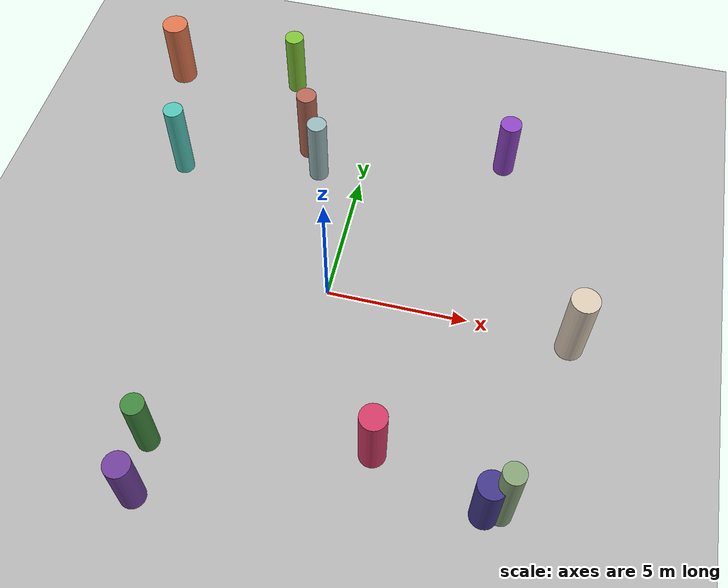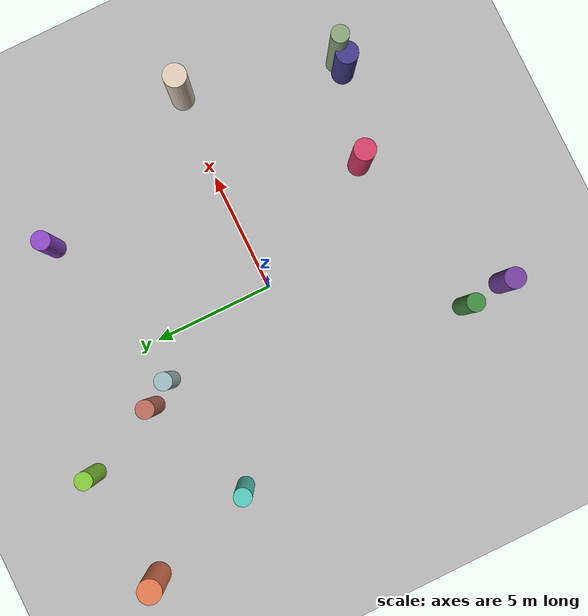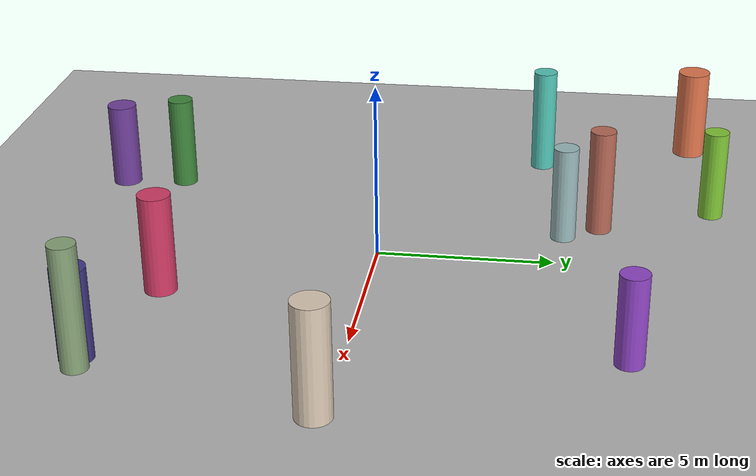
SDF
<sdf version="1.9">
 <world name="obstacle_avoidance">
  <physics type="ode">
   <max_step_size>0.004</max_step_size>
   <real_time_factor>1.0</real_time_factor>
   <real_time_update_rate>250</real_time_update_rate>
  </physics>
  <gravity>0 0 -9.8</gravity>
  <magnetic_field>6e-06 2.3e-05 -4.2e-05</magnetic_field>
  <atmosphere type="adiabatic"/>
  <scene>
   <grid>true</grid>
   <ambient>0.4 0.4 0.4 1</ambient>
   <background>0.7 0.7 0.7 1</background>
   <shadows>false</shadows>
  </scene>
  <plugin filename="gz-sim-physics-system" name="gz::sim::systems::Physics"/>
  <plugin filename="gz-sim-user-commands-system" name="gz::sim::systems::UserCommands"/>
  <plugin filename="gz-sim-scene-broadcaster-system" name="gz::sim::systems::SceneBroadcaster"/>
  <plugin filename="gz-sim-sensors-system" name="gz::sim::systems::Sensors">
   <render_engine>ogre2</render_engine>
  </plugin>
  <plugin filename="gz-sim-imu-system" name="gz::sim::systems::Imu"/>
  <plugin filename="gz-sim-air-pressure-system" name="gz::sim::systems::AirPressure"/>
  <plugin filename="gz-sim-magnetometer-system" name="gz::sim::systems::Magnetometer"/>
  <plugin filename="gz-sim-navsat-system" name="gz::sim::systems::NavSat"/>
  <light type="directional" name="sun">
   <cast_shadows>false</cast_shadows>
   <pose>0 0 10 0 0 0</pose>
   <diffuse>0.9 0.9 0.9 1</diffuse>
   <direction>-0.5 0.1 -0.9</direction>
  </light>
  <model name="ground_plane">
   <static>true</static>
   <link name="link">
    <collision name="c"><geometry><plane><normal>0 0 1</normal><size>200 200</size></plane></geometry></collision>
    <visual name="v">
     <geometry><plane><normal>0 0 1</normal><size>200 200</size></plane></geometry>
     <material><ambient>0.7 0.7 0.7 1</ambient><diffuse>0.7 0.7 0.7 1</diffuse></material>
    </visual>
   </link>
  </model>
  <spherical_coordinates>
   <surface_model>EARTH_WGS84</surface_model>
   <world_frame_orientation>ENU</world_frame_orientation>
   <latitude_deg>47.397971057728974</latitude_deg>
   <longitude_deg>8.546163739800146</longitude_deg>
   <elevation>0</elevation>
  </spherical_coordinates>
  <model name="cyl_1">
   <static>true</static>
   <pose>5.22 7.10 1.27 0 0 0</pose>
   <link name="l">
    <collision name="c">
     <geometry><cylinder><radius>0.39</radius><length>2.53</length></cylinder></geometry>
    </collision>
    <visual name="v">
     <geometry><cylinder><radius>0.39</radius><length>2.53</length></cylinder></geometry>
     <material><ambient>0.56 0.27 0.77 1</ambient><diffuse>0.56 0.27 0.77 1</diffuse></material>
    </visual>
   </link>
  </model>
  <model name="cyl_2">
   <static>true</static>
   <pose>-3.72 9.52 1.34 0 0 0</pose>
   <link name="l">
    <collision name="c">
     <geometry><cylinder><radius>0.36</radius><length>2.68</length></cylinder></geometry>
    </collision>
    <visual name="v">
     <geometry><cylinder><radius>0.36</radius><length>2.68</length></cylinder></geometry>
     <material><ambient>0.50 0.77 0.21 1</ambient><diffuse>0.50 0.77 0.21 1</diffuse></material>
    </visual>
   </link>
  </model>
  <model name="cyl_3">
   <static>true</static>
   <pose>-4.18 -6.71 1.37 0 0 0</pose>
   <link name="l">
    <collision name="c">
     <geometry><cylinder><radius>0.37</radius><length>2.74</length></cylinder></geometry>
    </collision>
    <visual name="v">
     <geometry><cylinder><radius>0.37</radius><length>2.74</length></cylinder></geometry>
     <material><ambient>0.25 0.53 0.24 1</ambient><diffuse>0.25 0.53 0.24 1</diffuse></material>
    </visual>
   </link>
  </model>
  <model name="cyl_4">
   <static>true</static>
   <pose>7.11 -6.50 1.72 0 0 0</pose>
   <link name="l">
    <collision name="c">
     <geometry><cylinder><radius>0.36</radius><length>3.44</length></cylinder></geometry>
    </collision>
    <visual name="v">
     <geometry><cylinder><radius>0.36</radius><length>3.44</length></cylinder></geometry>
     <material><ambient>0.53 0.64 0.47 1</ambient><diffuse>0.53 0.64 0.47 1</diffuse></material>
    </visual>
   </link>
  </model>
  <model name="cyl_5">
   <static>true</static>
   <pose>2.88 -5.51 1.42 0 0 0</pose>
   <link name="l">
    <collision name="c">
     <geometry><cylinder><radius>0.45</radius><length>2.84</length></cylinder></geometry>
    </collision>
    <visual name="v">
     <geometry><cylinder><radius>0.45</radius><length>2.84</length></cylinder></geometry>
     <material><ambient>0.82 0.23 0.40 1</ambient><diffuse>0.82 0.23 0.40 1</diffuse></material>
    </visual>
   </link>
  </model>
  <model name="cyl_6">
   <static>true</static>
   <pose>-2.32 6.22 1.56 0 0 0</pose>
   <link name="l">
    <collision name="c">
     <geometry><cylinder><radius>0.37</radius><length>3.12</length></cylinder></geometry>
    </collision>
    <visual name="v">
     <geometry><cylinder><radius>0.37</radius><length>3.12</length></cylinder></geometry>
     <material><ambient>0.71 0.41 0.34 1</ambient><diffuse>0.71 0.41 0.34 1</diffuse></material>
    </visual>
   </link>
  </model>
  <model name="cyl_7">
   <static>true</static>
   <pose>-6.82 4.36 1.59 0 0 0</pose>
   <link name="l">
    <collision name="c">
     <geometry><cylinder><radius>0.36</radius><length>3.18</length></cylinder></geometry>
    </collision>
    <visual name="v">
     <geometry><cylinder><radius>0.36</radius><length>3.18</length></cylinder></geometry>
     <material><ambient>0.32 0.77 0.71 1</ambient><diffuse>0.32 0.77 0.71 1</diffuse></material>
    </visual>
   </link>
  </model>
  <model name="cyl_8">
   <static>true</static>
   <pose>-4.01 -8.52 1.27 0 0 0</pose>
   <link name="l">
    <collision name="c">
     <geometry><cylinder><radius>0.43</radius><length>2.54</length></cylinder></geometry>
    </collision>
    <visual name="v">
     <geometry><cylinder><radius>0.43</radius><length>2.54</length></cylinder></geometry>
     <material><ambient>0.44 0.25 0.61 1</ambient><diffuse>0.44 0.25 0.61 1</diffuse></material>
    </visual>
   </link>
  </model>
  <model name="cyl_9">
   <static>true</static>
   <pose>-1.67 5.20 1.41 0 0 0</pose>
   <link name="l">
    <collision name="c">
     <geometry><cylinder><radius>0.36</radius><length>2.82</length></cylinder></geometry>
    </collision>
    <visual name="v">
     <geometry><cylinder><radius>0.36</radius><length>2.82</length></cylinder></geometry>
     <material><ambient>0.60 0.72 0.73 1</ambient><diffuse>0.60 0.72 0.73 1</diffuse></material>
    </visual>
   </link>
  </model>
  <model name="cyl_10">
   <static>true</static>
   <pose>-8.48 9.05 1.39 0 0 0</pose>
   <link name="l">
    <collision name="c">
     <geometry><cylinder><radius>0.49</radius><length>2.78</length></cylinder></geometry>
    </collision>
    <visual name="v">
     <geometry><cylinder><radius>0.49</radius><length>2.78</length></cylinder></geometry>
     <material><ambient>0.87 0.46 0.30 1</ambient><diffuse>0.87 0.46 0.30 1</diffuse></material>
    </visual>
   </link>
  </model>
  <model name="cyl_11">
   <static>true</static>
   <pose>8.53 -0.24 1.56 0 0 0</pose>
   <link name="l">
    <collision name="c">
     <geometry><cylinder><radius>0.48</radius><length>3.11</length></cylinder></geometry>
    </collision>
    <visual name="v">
     <geometry><cylinder><radius>0.48</radius><length>3.11</length></cylinder></geometry>
     <material><ambient>0.86 0.79 0.71 1</ambient><diffuse>0.86 0.79 0.71 1</diffuse></material>
    </visual>
   </link>
  </model>
  <model name="cyl_12">
   <static>true</static>
   <pose>6.61 -6.62 1.27 0 0 0</pose>
   <link name="l">
    <collision name="c">
     <geometry><cylinder><radius>0.46</radius><length>2.55</length></cylinder></geometry>
    </collision>
    <visual name="v">
     <geometry><cylinder><radius>0.46</radius><length>2.55</length></cylinder></geometry>
     <material><ambient>0.26 0.22 0.54 1</ambient><diffuse>0.26 0.22 0.54 1</diffuse></material>
    </visual>
   </link>
  </model>
 </world>
</sdf>
